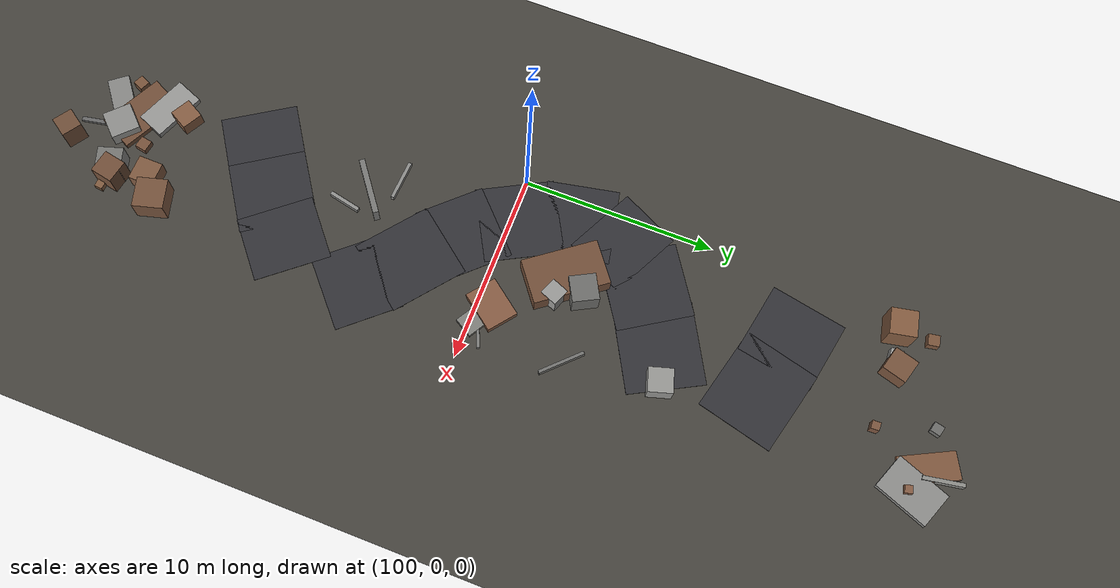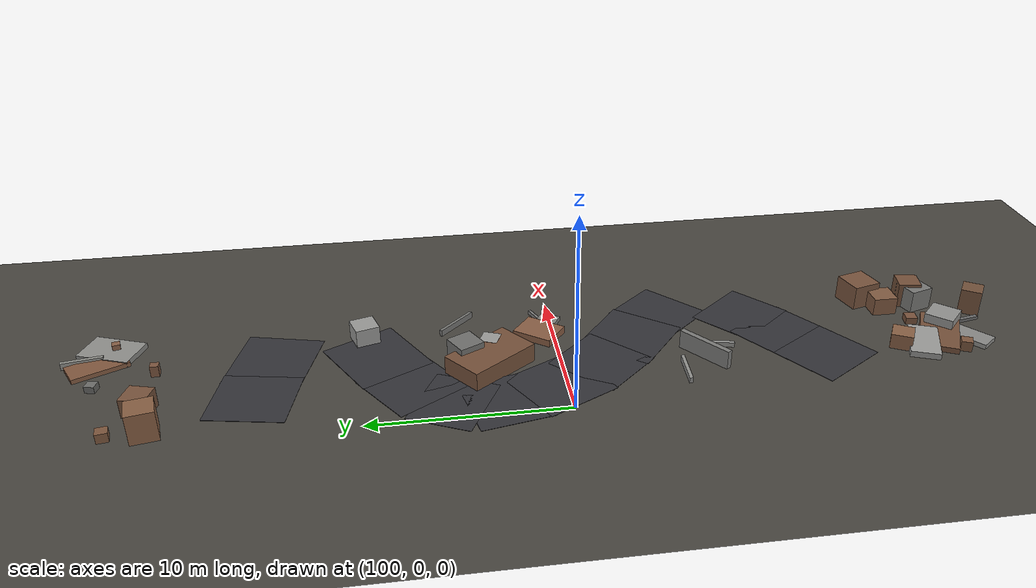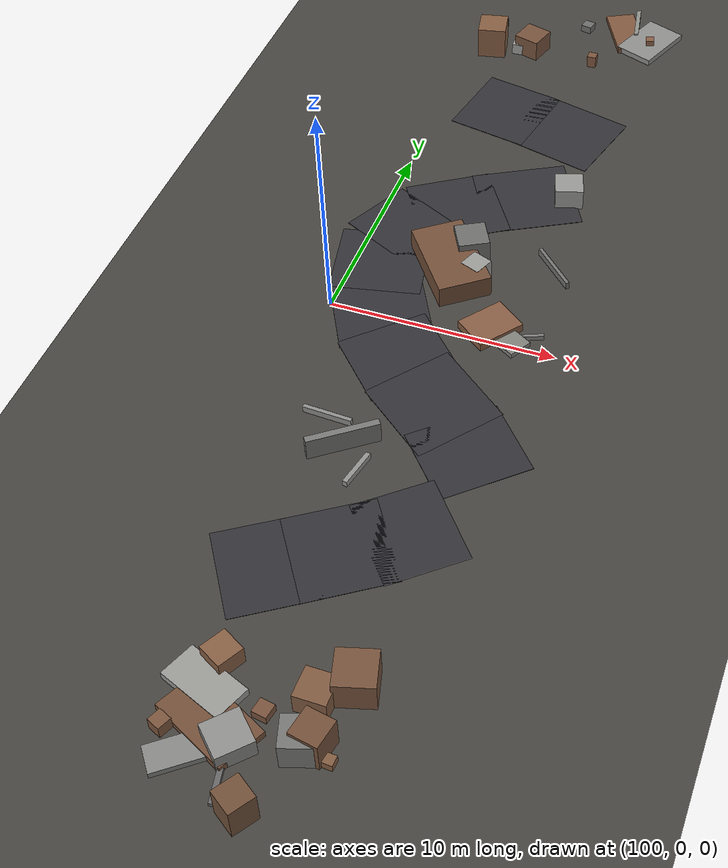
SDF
<sdf version="1.6">
 <world name="navitas_arena">
  <model name="ground_plane">
   <static>true</static>
   <link name="link">
    <collision name="collision">
     <geometry><plane><normal>0 0 1</normal><size>400 400</size></plane></geometry>
     <surface><friction><ode><mu>0.820</mu><mu2>0.820</mu2></ode></friction></surface>
    </collision>
    <visual name="visual">
     <cast_shadows>false</cast_shadows>
     <geometry><plane><normal>0 0 1</normal><size>400 400</size></plane></geometry>
     <material><ambient>0.280 0.270 0.250 1</ambient><diffuse>0.280 0.270 0.250 1</diffuse></material>
    </visual>
   </link>
  </model>
  <model name="road_zor_3_6">
   <static>true</static>
   <pose>102.904 -13.592 0.040 0 0 0.582</pose>
   <link name="link">
    <collision name="col"><geometry><box><size>3.593 4.000 0.020</size></box></geometry></collision>
    <visual name="vis">
     <geometry><box><size>3.593 4.000 0.020</size></box></geometry>
     <material><ambient>0.20 0.20 0.22 1</ambient><diffuse>0.20 0.20 0.22 1</diffuse></material>
    </visual>
   </link>
  </model>
  <model name="road_zor_3_7">
   <static>true</static>
   <pose>105.225 -12.050 0.040 0 0 0.591</pose>
   <link name="link">
    <collision name="col"><geometry><box><size>3.780 4.000 0.020</size></box></geometry></collision>
    <visual name="vis">
     <geometry><box><size>3.780 4.000 0.020</size></box></geometry>
     <material><ambient>0.20 0.20 0.22 1</ambient><diffuse>0.20 0.20 0.22 1</diffuse></material>
    </visual>
   </link>
  </model>
  <model name="road_zor_3_8">
   <static>true</static>
   <pose>107.396 -10.426 0.040 0 0 0.700</pose>
   <link name="link">
    <collision name="col"><geometry><box><size>3.452 4.000 0.020</size></box></geometry></collision>
    <visual name="vis">
     <geometry><box><size>3.452 4.000 0.020</size></box></geometry>
     <material><ambient>0.20 0.20 0.22 1</ambient><diffuse>0.20 0.20 0.22 1</diffuse></material>
    </visual>
   </link>
  </model>
  <model name="road_zor_3_10">
   <static>true</static>
   <pose>108.226 -6.000 0.040 0 0 2.299</pose>
   <link name="link">
    <collision name="col"><geometry><box><size>3.580 4.000 0.020</size></box></geometry></collision>
    <visual name="vis">
     <geometry><box><size>3.580 4.000 0.020</size></box></geometry>
     <material><ambient>0.20 0.20 0.22 1</ambient><diffuse>0.20 0.20 0.22 1</diffuse></material>
    </visual>
   </link>
  </model>
  <model name="road_zor_3_11">
   <static>true</static>
   <pose>106.066 -4.000 0.040 0 0 2.474</pose>
   <link name="link">
    <collision name="col"><geometry><box><size>4.131 4.000 0.020</size></box></geometry></collision>
    <visual name="vis">
     <geometry><box><size>4.131 4.000 0.020</size></box></geometry>
     <material><ambient>0.20 0.20 0.22 1</ambient><diffuse>0.20 0.20 0.22 1</diffuse></material>
    </visual>
   </link>
  </model>
  <model name="road_zor_3_12">
   <static>true</static>
   <pose>103.837 -2.000 0.040 0 0 2.336</pose>
   <link name="link">
    <collision name="col"><geometry><box><size>3.673 4.000 0.020</size></box></geometry></collision>
    <visual name="vis">
     <geometry><box><size>3.673 4.000 0.020</size></box></geometry>
     <material><ambient>0.20 0.20 0.22 1</ambient><diffuse>0.20 0.20 0.22 1</diffuse></material>
    </visual>
   </link>
  </model>
  <model name="road_zor_3_13">
   <static>true</static>
   <pose>102.121 0.400 0.040 0 0 2.066</pose>
   <link name="link">
    <collision name="col"><geometry><box><size>4.081 4.000 0.020</size></box></geometry></collision>
    <visual name="vis">
     <geometry><box><size>4.081 4.000 0.020</size></box></geometry>
     <material><ambient>0.20 0.20 0.22 1</ambient><diffuse>0.20 0.20 0.22 1</diffuse></material>
    </visual>
   </link>
  </model>
  <model name="road_zor_3_14">
   <static>true</static>
   <pose>101.081 3.200 0.040 0 0 1.771</pose>
   <link name="link">
    <collision name="col"><geometry><box><size>3.757 4.000 0.020</size></box></geometry></collision>
    <visual name="vis">
     <geometry><box><size>3.757 4.000 0.020</size></box></geometry>
     <material><ambient>0.20 0.20 0.22 1</ambient><diffuse>0.20 0.20 0.22 1</diffuse></material>
    </visual>
   </link>
  </model>
  <model name="road_zor_3_15">
   <static>true</static>
   <pose>101.335 5.696 0.040 0 0 1.114</pose>
   <link name="link">
    <collision name="col"><geometry><box><size>3.342 4.000 0.020</size></box></geometry></collision>
    <visual name="vis">
     <geometry><box><size>3.342 4.000 0.020</size></box></geometry>
     <material><ambient>0.20 0.20 0.22 1</ambient><diffuse>0.20 0.20 0.22 1</diffuse></material>
    </visual>
   </link>
  </model>
  <model name="road_zor_3_16">
   <static>true</static>
   <pose>103.130 7.609 0.040 0 0 0.576</pose>
   <link name="link">
    <collision name="col"><geometry><box><size>3.898 4.000 0.020</size></box></geometry></collision>
    <visual name="vis">
     <geometry><box><size>3.898 4.000 0.020</size></box></geometry>
     <material><ambient>0.20 0.20 0.22 1</ambient><diffuse>0.20 0.20 0.22 1</diffuse></material>
    </visual>
   </link>
  </model>
  <model name="road_zor_3_17">
   <static>true</static>
   <pose>105.901 9.243 0.040 0 0 0.495</pose>
   <link name="link">
    <collision name="col"><geometry><box><size>4.341 4.000 0.020</size></box></geometry></collision>
    <visual name="vis">
     <geometry><box><size>4.341 4.000 0.020</size></box></geometry>
     <material><ambient>0.20 0.20 0.22 1</ambient><diffuse>0.20 0.20 0.22 1</diffuse></material>
    </visual>
   </link>
  </model>
  <model name="road_zor_3_20">
   <static>true</static>
   <pose>106.213 14.464 0.040 0 0 2.890</pose>
   <link name="link">
    <collision name="col"><geometry><box><size>4.518 4.000 0.020</size></box></geometry></collision>
    <visual name="vis">
     <geometry><box><size>4.518 4.000 0.020</size></box></geometry>
     <material><ambient>0.20 0.20 0.22 1</ambient><diffuse>0.20 0.20 0.22 1</diffuse></material>
    </visual>
   </link>
  </model>
  <model name="road_zor_3_21">
   <static>true</static>
   <pose>103.040 15.192 0.040 0 0 2.949</pose>
   <link name="link">
    <collision name="col"><geometry><box><size>3.795 4.000 0.020</size></box></geometry></collision>
    <visual name="vis">
     <geometry><box><size>3.795 4.000 0.020</size></box></geometry>
     <material><ambient>0.20 0.20 0.22 1</ambient><diffuse>0.20 0.20 0.22 1</diffuse></material>
    </visual>
   </link>
  </model>
  <model name="deb_zor_8">
   <static>true</static>
   <pose>105.389 3.486 0.503 0 0 2.756</pose>
   <link name="link">
    <collision name="col"><geometry><box><size>0.937 0.937 1.006</size></box></geometry></collision>
    <visual name="vis">
     <geometry><box><size>0.937 0.937 1.006</size></box></geometry>
     <material><ambient>0.61 0.61 0.60 1</ambient><diffuse>0.61 0.61 0.60 1</diffuse></material>
    </visual>
   </link>
  </model>
  <model name="deb_zor_24">
   <static>true</static>
   <pose>104.920 -22.105 0.088 0 0 1.766</pose>
   <link name="link">
    <collision name="col"><geometry><box><size>1.910 0.216 0.176</size></box></geometry></collision>
    <visual name="vis">
     <geometry><box><size>1.910 0.216 0.176</size></box></geometry>
     <material><ambient>0.41 0.41 0.41 1</ambient><diffuse>0.41 0.41 0.41 1</diffuse></material>
    </visual>
   </link>
  </model>
  <model name="deb_zor_25">
   <static>true</static>
   <pose>107.055 -20.197 0.605 0 0 1.877</pose>
   <link name="link">
    <collision name="col"><geometry><box><size>1.329 1.329 1.211</size></box></geometry></collision>
    <visual name="vis">
     <geometry><box><size>1.329 1.329 1.211</size></box></geometry>
     <material><ambient>0.47 0.47 0.46 1</ambient><diffuse>0.47 0.47 0.46 1</diffuse></material>
    </visual>
   </link>
  </model>
  <model name="deb_zor_26">
   <static>true</static>
   <pose>107.441 0.517 0.112 0 0 2.610</pose>
   <link name="link">
    <collision name="col"><geometry><box><size>2.569 1.072 0.224</size></box></geometry></collision>
    <visual name="vis">
     <geometry><box><size>2.569 1.072 0.224</size></box></geometry>
     <material><ambient>0.51 0.51 0.49 1</ambient><diffuse>0.51 0.51 0.49 1</diffuse></material>
    </visual>
   </link>
  </model>
  <model name="deb_zor_31">
   <static>true</static>
   <pose>102.242 -20.918 0.281 0 0 2.725</pose>
   <link name="link">
    <collision name="col"><geometry><box><size>0.578 0.578 0.561</size></box></geometry></collision>
    <visual name="vis">
     <geometry><box><size>0.578 0.578 0.561</size></box></geometry>
     <material><ambient>0.49 0.34 0.24 1</ambient><diffuse>0.49 0.34 0.24 1</diffuse></material>
    </visual>
   </link>
  </model>
  <model name="deb_zor_44">
   <static>true</static>
   <pose>102.969 -18.962 0.165 0 0 2.763</pose>
   <link name="link">
    <collision name="col"><geometry><box><size>2.807 1.524 0.329</size></box></geometry></collision>
    <visual name="vis">
     <geometry><box><size>2.807 1.524 0.329</size></box></geometry>
     <material><ambient>0.61 0.61 0.60 1</ambient><diffuse>0.61 0.61 0.60 1</diffuse></material>
    </visual>
   </link>
  </model>
  <model name="deb_zor_61">
   <static>true</static>
   <pose>104.717 -20.802 0.404 0 0 0.802</pose>
   <link name="link">
    <collision name="col"><geometry><box><size>1.500 1.500 0.808</size></box></geometry></collision>
    <visual name="vis">
     <geometry><box><size>1.500 1.500 0.808</size></box></geometry>
     <material><ambient>0.57 0.57 0.56 1</ambient><diffuse>0.57 0.57 0.56 1</diffuse></material>
    </visual>
   </link>
  </model>
  <model name="deb_zor_62">
   <static>true</static>
   <pose>104.436 -8.300 0.135 0 0 1.358</pose>
   <link name="link">
    <collision name="col"><geometry><box><size>1.686 0.199 0.271</size></box></geometry></collision>
    <visual name="vis">
     <geometry><box><size>1.686 0.199 0.271</size></box></geometry>
     <material><ambient>0.58 0.58 0.57 1</ambient><diffuse>0.58 0.58 0.57 1</diffuse></material>
    </visual>
   </link>
  </model>
  <model name="deb_zor_70">
   <static>true</static>
   <pose>108.185 -20.378 0.167 0 0 1.498</pose>
   <link name="link">
    <collision name="col"><geometry><box><size>0.431 0.431 0.334</size></box></geometry></collision>
    <visual name="vis">
     <geometry><box><size>0.431 0.431 0.334</size></box></geometry>
     <material><ambient>0.52 0.37 0.26 1</ambient><diffuse>0.52 0.37 0.26 1</diffuse></material>
    </visual>
   </link>
  </model>
  <model name="deb_zor_92">
   <static>true</static>
   <pose>102.193 20.173 0.271 0 0 0.035</pose>
   <link name="link">
    <collision name="col"><geometry><box><size>0.647 0.647 0.541</size></box></geometry></collision>
    <visual name="vis">
     <geometry><box><size>0.647 0.647 0.541</size></box></geometry>
     <material><ambient>0.62 0.62 0.61 1</ambient><diffuse>0.62 0.62 0.61 1</diffuse></material>
    </visual>
   </link>
  </model>
  <model name="deb_zor_108">
   <static>true</static>
   <pose>103.753 -20.215 0.154 0 0 2.680</pose>
   <link name="link">
    <collision name="col"><geometry><box><size>3.471 1.989 0.308</size></box></geometry></collision>
    <visual name="vis">
     <geometry><box><size>3.471 1.989 0.308</size></box></geometry>
     <material><ambient>0.46 0.32 0.23 1</ambient><diffuse>0.46 0.32 0.23 1</diffuse></material>
    </visual>
   </link>
  </model>
  <model name="deb_zor_113">
   <static>true</static>
   <pose>100.753 21.691 0.248 0 0 1.743</pose>
   <link name="link">
    <collision name="col"><geometry><box><size>0.583 0.583 0.497</size></box></geometry></collision>
    <visual name="vis">
     <geometry><box><size>0.583 0.583 0.497</size></box></geometry>
     <material><ambient>0.49 0.34 0.24 1</ambient><diffuse>0.49 0.34 0.24 1</diffuse></material>
    </visual>
   </link>
  </model>
  <model name="deb_zor_121">
   <static>true</static>
   <pose>102.770 20.409 0.508 0 0 1.284</pose>
   <link name="link">
    <collision name="col"><geometry><box><size>1.268 1.268 1.016</size></box></geometry></collision>
    <visual name="vis">
     <geometry><box><size>1.268 1.268 1.016</size></box></geometry>
     <material><ambient>0.47 0.33 0.24 1</ambient><diffuse>0.47 0.33 0.24 1</diffuse></material>
    </visual>
   </link>
  </model>
  <model name="deb_zor_125">
   <static>true</static>
   <pose>107.338 23.966 0.188 0 0 1.747</pose>
   <link name="link">
    <collision name="col"><geometry><box><size>2.060 0.207 0.376</size></box></geometry></collision>
    <visual name="vis">
     <geometry><box><size>2.060 0.207 0.376</size></box></geometry>
     <material><ambient>0.56 0.56 0.54 1</ambient><diffuse>0.56 0.56 0.54 1</diffuse></material>
    </visual>
   </link>
  </model>
  <model name="deb_zor_136">
   <static>true</static>
   <pose>108.361 22.473 0.285 0 0 0.240</pose>
   <link name="link">
    <collision name="col"><geometry><box><size>0.403 0.403 0.570</size></box></geometry></collision>
    <visual name="vis">
     <geometry><box><size>0.403 0.403 0.570</size></box></geometry>
     <material><ambient>0.53 0.37 0.27 1</ambient><diffuse>0.53 0.37 0.27 1</diffuse></material>
    </visual>
   </link>
  </model>
  <model name="deb_zor_169">
   <static>true</static>
   <pose>105.965 20.184 0.296 0 0 1.594</pose>
   <link name="link">
    <collision name="col"><geometry><box><size>0.425 0.425 0.593</size></box></geometry></collision>
    <visual name="vis">
     <geometry><box><size>0.425 0.425 0.593</size></box></geometry>
     <material><ambient>0.49 0.34 0.25 1</ambient><diffuse>0.49 0.34 0.25 1</diffuse></material>
    </visual>
   </link>
  </model>
  <model name="deb_zor_171">
   <static>true</static>
   <pose>107.473 -19.983 0.678 0 0 2.954</pose>
   <link name="link">
    <collision name="col"><geometry><box><size>1.207 1.207 1.356</size></box></geometry></collision>
    <visual name="vis">
     <geometry><box><size>1.207 1.207 1.356</size></box></geometry>
     <material><ambient>0.46 0.32 0.23 1</ambient><diffuse>0.46 0.32 0.23 1</diffuse></material>
    </visual>
   </link>
  </model>
  <model name="deb_zor_175">
   <static>true</static>
   <pose>105.345 2.875 0.179 0 0 3.070</pose>
   <link name="link">
    <collision name="col"><geometry><box><size>0.718 0.718 0.359</size></box></geometry></collision>
    <visual name="vis">
     <geometry><box><size>0.718 0.718 0.359</size></box></geometry>
     <material><ambient>0.52 0.52 0.51 1</ambient><diffuse>0.52 0.52 0.51 1</diffuse></material>
    </visual>
   </link>
  </model>
  <model name="deb_zor_181">
   <static>true</static>
   <pose>106.879 -18.261 0.478 0 0 3.132</pose>
   <link name="link">
    <collision name="col"><geometry><box><size>1.292 1.292 0.955</size></box></geometry></collision>
    <visual name="vis">
     <geometry><box><size>1.292 1.292 0.955</size></box></geometry>
     <material><ambient>0.51 0.36 0.26 1</ambient><diffuse>0.51 0.36 0.26 1</diffuse></material>
    </visual>
   </link>
  </model>
  <model name="deb_zor_182">
   <static>true</static>
   <pose>103.175 -21.690 0.129 0 0 0.660</pose>
   <link name="link">
    <collision name="col"><geometry><box><size>2.108 1.136 0.259</size></box></geometry></collision>
    <visual name="vis">
     <geometry><box><size>2.108 1.136 0.259</size></box></geometry>
     <material><ambient>0.54 0.54 0.53 1</ambient><diffuse>0.54 0.54 0.53 1</diffuse></material>
    </visual>
   </link>
  </model>
  <model name="deb_zor_184">
   <static>true</static>
   <pose>106.937 23.174 0.121 0 0 2.041</pose>
   <link name="link">
    <collision name="col"><geometry><box><size>2.908 1.425 0.242</size></box></geometry></collision>
    <visual name="vis">
     <geometry><box><size>2.908 1.425 0.242</size></box></geometry>
     <material><ambient>0.51 0.35 0.25 1</ambient><diffuse>0.51 0.35 0.25 1</diffuse></material>
    </visual>
   </link>
  </model>
  <model name="deb_zor_185">
   <static>true</static>
   <pose>108.299 22.710 0.144 0 0 1.197</pose>
   <link name="link">
    <collision name="col"><geometry><box><size>2.880 1.938 0.288</size></box></geometry></collision>
    <visual name="vis">
     <geometry><box><size>2.880 1.938 0.288</size></box></geometry>
     <material><ambient>0.56 0.56 0.55 1</ambient><diffuse>0.56 0.56 0.55 1</diffuse></material>
    </visual>
   </link>
  </model>
  <model name="deb_zor_187">
   <static>true</static>
   <pose>108.159 0.507 0.108 0 0 0.391</pose>
   <link name="link">
    <collision name="col"><geometry><box><size>2.302 0.153 0.216</size></box></geometry></collision>
    <visual name="vis">
     <geometry><box><size>2.302 0.153 0.216</size></box></geometry>
     <material><ambient>0.49 0.49 0.48 1</ambient><diffuse>0.49 0.49 0.48 1</diffuse></material>
    </visual>
   </link>
  </model>
  <model name="deb_zor_189">
   <static>true</static>
   <pose>106.928 0.753 0.193 0 0 0.916</pose>
   <link name="link">
    <collision name="col"><geometry><box><size>2.165 1.682 0.385</size></box></geometry></collision>
    <visual name="vis">
     <geometry><box><size>2.165 1.682 0.385</size></box></geometry>
     <material><ambient>0.54 0.37 0.27 1</ambient><diffuse>0.54 0.37 0.27 1</diffuse></material>
    </visual>
   </link>
  </model>
  <model name="deb_zor_192">
   <static>true</static>
   <pose>105.338 -19.309 0.182 0 0 1.399</pose>
   <link name="link">
    <collision name="col"><geometry><box><size>0.611 0.611 0.365</size></box></geometry></collision>
    <visual name="vis">
     <geometry><box><size>0.611 0.611 0.365</size></box></geometry>
     <material><ambient>0.48 0.33 0.24 1</ambient><diffuse>0.48 0.33 0.24 1</diffuse></material>
    </visual>
   </link>
  </model>
  <model name="deb_zor_209">
   <static>true</static>
   <pose>106.036 -23.065 0.704 0 0 2.552</pose>
   <link name="link">
    <collision name="col"><geometry><box><size>1.084 1.084 1.407</size></box></geometry></collision>
    <visual name="vis">
     <geometry><box><size>1.084 1.084 1.407</size></box></geometry>
     <material><ambient>0.45 0.32 0.23 1</ambient><diffuse>0.45 0.32 0.23 1</diffuse></material>
    </visual>
   </link>
  </model>
  <model name="deb_zor_212">
   <static>true</static>
   <pose>107.997 -17.370 0.655 0 0 0.271</pose>
   <link name="link">
    <collision name="col"><geometry><box><size>1.589 1.589 1.309</size></box></geometry></collision>
    <visual name="vis">
     <geometry><box><size>1.589 1.589 1.309</size></box></geometry>
     <material><ambient>0.47 0.33 0.24 1</ambient><diffuse>0.47 0.33 0.24 1</diffuse></material>
    </visual>
   </link>
  </model>
  <model name="deb_zor_219">
   <static>true</static>
   <pose>104.754 4.796 0.659 0 0 0.493</pose>
   <link name="link">
    <collision name="col"><geometry><box><size>1.368 1.368 1.317</size></box></geometry></collision>
    <visual name="vis">
     <geometry><box><size>1.368 1.368 1.317</size></box></geometry>
     <material><ambient>0.44 0.44 0.43 1</ambient><diffuse>0.44 0.44 0.43 1</diffuse></material>
    </visual>
   </link>
  </model>
  <model name="deb_zor_224">
   <static>true</static>
   <pose>108.451 5.028 0.169 0 0 2.359</pose>
   <link name="link">
    <collision name="col"><geometry><box><size>2.460 0.161 0.338</size></box></geometry></collision>
    <visual name="vis">
     <geometry><box><size>2.460 0.161 0.338</size></box></geometry>
     <material><ambient>0.46 0.46 0.45 1</ambient><diffuse>0.46 0.46 0.45 1</diffuse></material>
    </visual>
   </link>
  </model>
  <model name="deb_zor_231">
   <static>true</static>
   <pose>104.974 23.036 0.179 0 0 2.895</pose>
   <link name="link">
    <collision name="col"><geometry><box><size>0.521 0.521 0.359</size></box></geometry></collision>
    <visual name="vis">
     <geometry><box><size>0.521 0.521 0.359</size></box></geometry>
     <material><ambient>0.43 0.43 0.42 1</ambient><diffuse>0.43 0.43 0.42 1</diffuse></material>
    </visual>
   </link>
  </model>
  <model name="deb_zor_235">
   <static>true</static>
   <pose>102.309 -6.053 0.151 0 0 3.086</pose>
   <link name="link">
    <collision name="col"><geometry><box><size>2.114 0.180 0.302</size></box></geometry></collision>
    <visual name="vis">
     <geometry><box><size>2.114 0.180 0.302</size></box></geometry>
     <material><ambient>0.56 0.56 0.55 1</ambient><diffuse>0.56 0.56 0.55 1</diffuse></material>
    </visual>
   </link>
  </model>
  <model name="deb_zor_239">
   <static>true</static>
   <pose>103.142 -17.807 0.409 0 0 1.069</pose>
   <link name="link">
    <collision name="col"><geometry><box><size>1.115 1.115 0.817</size></box></geometry></collision>
    <visual name="vis">
     <geometry><box><size>1.115 1.115 0.817</size></box></geometry>
     <material><ambient>0.54 0.38 0.27 1</ambient><diffuse>0.54 0.38 0.27 1</diffuse></material>
    </visual>
   </link>
  </model>
  <model name="chic_zor_2">
   <static>true</static>
   <pose>103.485 -7.307 0.500 0 0 0.642</pose>
   <link name="link">
    <collision name="col"><geometry><box><size>3.041 0.294 1.000</size></box></geometry></collision>
    <visual name="vis">
     <geometry><box><size>3.041 0.294 1.000</size></box></geometry>
     <material><ambient>0.48 0.48 0.47 1</ambient><diffuse>0.48 0.48 0.47 1</diffuse></material>
    </visual>
   </link>
  </model>
  <model name="chic_zor_3">
   <static>true</static>
   <pose>104.176 3.633 0.500 0 0 2.221</pose>
   <link name="link">
    <collision name="col"><geometry><box><size>3.972 2.350 1.000</size></box></geometry></collision>
    <visual name="vis">
     <geometry><box><size>3.972 2.350 1.000</size></box></geometry>
     <material><ambient>0.46 0.32 0.23 1</ambient><diffuse>0.46 0.32 0.23 1</diffuse></material>
    </visual>
   </link>
  </model>
  <model name="chic_zor_4">
   <static>true</static>
   <pose>107.729 9.842 0.500 0 0 1.861</pose>
   <link name="link">
    <collision name="col"><geometry><box><size>1.263 1.263 1.000</size></box></geometry></collision>
    <visual name="vis">
     <geometry><box><size>1.263 1.263 1.000</size></box></geometry>
     <material><ambient>0.60 0.60 0.59 1</ambient><diffuse>0.60 0.60 0.59 1</diffuse></material>
    </visual>
   </link>
  </model>
  <model name="chic_zor_5">
   <static>true</static>
   <pose>100.838 19.883 0.785 0 0 0.199</pose>
   <link name="link">
    <collision name="col"><geometry><box><size>1.354 1.354 1.569</size></box></geometry></collision>
    <visual name="vis">
     <geometry><box><size>1.354 1.354 1.569</size></box></geometry>
     <material><ambient>0.53 0.37 0.26 1</ambient><diffuse>0.53 0.37 0.26 1</diffuse></material>
    </visual>
   </link>
  </model>
 </world>
</sdf>
